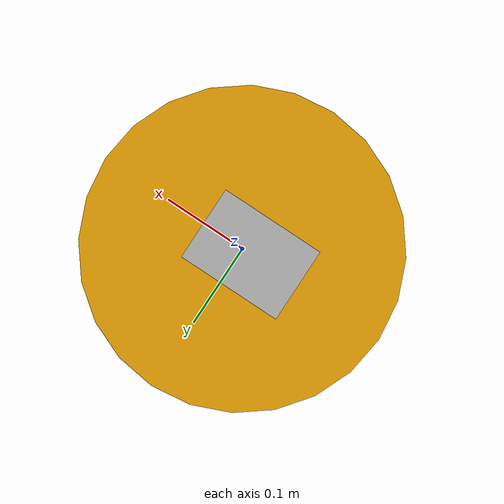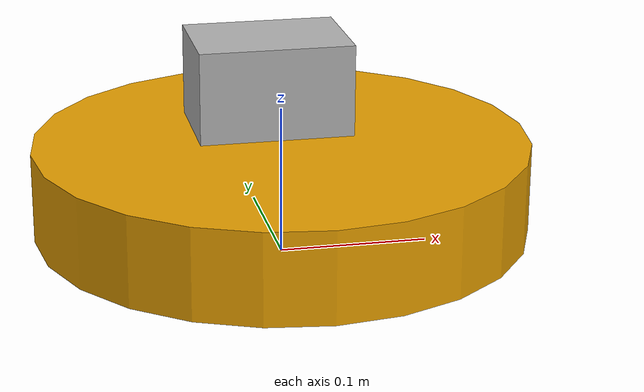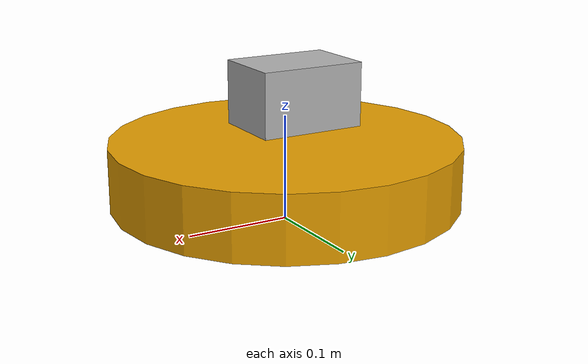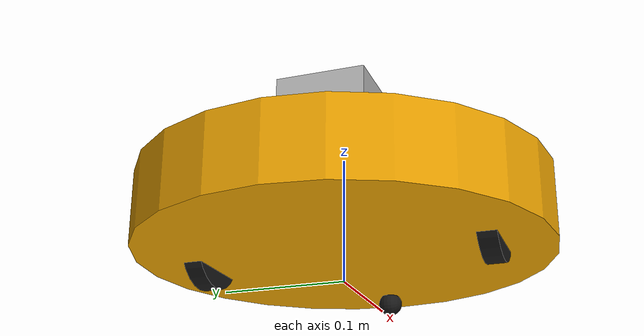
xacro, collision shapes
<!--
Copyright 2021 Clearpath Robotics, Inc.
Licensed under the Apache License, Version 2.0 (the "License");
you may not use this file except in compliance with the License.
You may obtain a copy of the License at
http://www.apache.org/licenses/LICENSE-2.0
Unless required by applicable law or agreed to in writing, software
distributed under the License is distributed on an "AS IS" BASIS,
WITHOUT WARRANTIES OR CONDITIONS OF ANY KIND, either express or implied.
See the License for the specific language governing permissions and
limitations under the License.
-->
<?xml version="1.0" ?>
<robot name="glitch" xmlns:xacro="http://ros.org/wiki/xacro">
  <!-- Base robot model -->
  <xacro:include filename="$(find glitch_description)/description/urdf/robot.urdf.xacro" />
  <xacro:include filename="$(find glitch_description)/description/urdf/rplidar.urdf.xacro" />

  <!-- Mechanical properties -->
  <xacro:property name="rplidar_x_offset"              value="${0.393584*cm2m}"/>
  <xacro:property name="rplidar_y_offset"              value="${0*cm2m}"/>
  <xacro:property name="rplidar_z_offset"              value="${7.529272*cm2m}"/>

  <!-- glitch sensor definitions -->
  <xacro:rplidar name="rplidar" parent_link="base_link" gazebo="$(arg gazebo)">
    <origin xyz="${rplidar_x_offset} ${rplidar_y_offset} ${rplidar_z_offset + base_link_z_offset}"
            rpy="0 0 ${pi/2}"/>
  </xacro:rplidar>

  <!-- Base footprint for navigation -->
  <link name="base_footprint" />
  <joint name="base_footprint_joint" type="fixed">
    <!-- Create3's base_link is already on the ground -->
    <origin xyz="0 0 0" rpy="0 0 0" />
    <parent link="base_link" />
    <child link="base_footprint" />
  </joint>
</robot>

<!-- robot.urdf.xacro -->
<robot name="robot" xmlns:xacro="http://ros.org/wiki/xacro">

  <xacro:include filename="$(find glitch_description)/description/urdf/caster.urdf.xacro" />
  <xacro:include filename="$(find glitch_description)/description/urdf/common_properties.urdf.xacro"/>
  <xacro:include filename="$(find glitch_description)/description/urdf/imu.urdf.xacro" />

  <!-- I'm not able to detach the ir_intensity sensor -->
  <xacro:include filename="$(find glitch_description)/description/urdf/wheel_with_wheeldrop.urdf.xacro" />

  <!-- Gazebo version -->
  <xacro:arg name="gazebo"                       default="classic" />

  <!-- Namespace -->
  <xacro:arg name="namespace"                    default=""/>

  <!-- Mechanical properties -->
  <xacro:property name="body_z_offset"           value="${-2.5*cm2m}" />
  <xacro:property name="body_collision_z_offset" value="${1*cm2m}" />
  <xacro:property name="body_mass"               value="2.300" />
  <xacro:property name="body_radius"             value="${16.4*cm2m}" />
  <xacro:property name="body_length"             value="${6*cm2m}" />

  <xacro:if value="${'$(arg gazebo)' == 'ignition'}">
    <xacro:property name="body_cog_x_offset"       value="${2.28*cm2m}" />
  </xacro:if>
  <xacro:if value="${'$(arg gazebo)' == 'classic'}">
    <xacro:property name="body_cog_x_offset"       value="${0*cm2m}" />
  </xacro:if>

  <xacro:property name="wheel_height"            value="${-2.75*cm2m}" />
  <xacro:property name="distance_between_wheels" value="${23.3*cm2m}" />

  <xacro:property name="caster_position_x"       value="${12.5*cm2m}" />
  <xacro:if value="${'$(arg gazebo)' == 'ignition'}">
    <xacro:property name="caster_position_z"       value="${-5.03*cm2m}" />
  </xacro:if>
  <xacro:if value="${'$(arg gazebo)' == 'classic'}">
    <xacro:property name="caster_position_z"       value="${-5.2*cm2m}" />
  </xacro:if>

  <xacro:property name="wheel_drop_offset_z"     value="${3.5*mm2m}"/>
  <xacro:property name="wheel_drop_z"            value="${wheel_height + wheel_drop_offset_z}"/>

  <xacro:property name="base_link_z_offset"     value="${6.42*cm2m}"/>

  <!-- Create 3 base definition-->
  <link name="base_link">
    <visual>
      <origin xyz="0 0 ${body_z_offset + base_link_z_offset}" rpy="0 0 ${pi/2}"/>
      <geometry>
        <mesh filename="package://glitch_description/description/models/glitch/meshes/body_visual.dae" />
      </geometry>
    </visual>
    <collision name="create3_base_collision">
      <origin xyz="0 0 ${body_z_offset + body_collision_z_offset  + base_link_z_offset}" rpy="0 0 ${pi/2}"/>
      <geometry>
        <cylinder length="${body_length}" radius="${body_radius}"/>
      </geometry>
    </collision>
    <xacro:inertial_cylinder_with_pose mass="${body_mass}" radius="${body_radius}" length="${body_length}">
      <origin xyz="${body_cog_x_offset} 0 ${body_collision_z_offset + base_link_z_offset}"/>
    </xacro:inertial_cylinder_with_pose>
  </link>

  <xacro:if value="${'$(arg gazebo)' == 'ignition'}">
    <gazebo reference="base_link">
      <xacro:material_darkgray/>
    </gazebo>
  </xacro:if>

  <!-- Wheels with mechanical wheel drop -->
  <xacro:wheel_with_wheeldrop name="left" gazebo="$(arg gazebo)" namespace="$(arg namespace)">
    <origin xyz="0 ${distance_between_wheels/2} ${wheel_drop_z  + base_link_z_offset}" rpy="${-pi/2} 0 0"/>
  </xacro:wheel_with_wheeldrop>

  <xacro:wheel_with_wheeldrop name="right" gazebo="$(arg gazebo)" namespace="$(arg namespace)">
    <origin xyz="0 ${-distance_between_wheels/2} ${wheel_drop_z  + base_link_z_offset}" rpy="${-pi/2} 0 0"/>
  </xacro:wheel_with_wheeldrop>

  <!-- Caster wheel -->
  <xacro:caster name="front_caster" parent_link="base_link">
    <origin xyz="${caster_position_x} 0 ${caster_position_z  + base_link_z_offset}" rpy="${-pi/2} 0 0"/>
  </xacro:caster>

  <!-- IMU -->
  <xacro:imu_sensor gazebo="$(arg gazebo)" namespace="$(arg namespace)">
    <origin xyz="0.050613 0.043673 ${0.0202 + base_link_z_offset}"/>
  </xacro:imu_sensor>

  <xacro:if value="${'$(arg gazebo)' == 'ignition'}">
    <gazebo>
      <plugin filename="libign_ros2_control-system.so" name="ign_ros2_control::IgnitionROS2ControlPlugin">
        <parameters>$(find glitch_control)/config/control.yaml</parameters>
        <ros>
          <remapping>~/odom:=odom</remapping>
          <remapping>/tf:=tf</remapping>
          <remapping>/tf_static:=tf_static</remapping>
          <remapping>/diagnostics:=diagnostics</remapping>
          <namespace>$(arg namespace)</namespace>
        </ros>
      </plugin>
    </gazebo>
  </xacro:if>

  <!-- Plugins -->
  <xacro:if value="${'$(arg gazebo)' == 'classic'}">
    <!-- Ground truth pose -->
    <gazebo>
      <plugin name="gazebo_ros_p3d_robot" filename="libgazebo_ros_p3d.so">
        <ros>
          <namespace>$(arg namespace)</namespace>
          <remapping>odom:=sim_ground_truth_pose</remapping>
        </ros>
        <body_name>base_link</body_name>
        <frame_name>world</frame_name>
        <update_rate>62</update_rate>
        <xyz_offset>0 0 0</xyz_offset>
        <rpy_offset>0.0 0.0 0.0</rpy_offset>
        <gaussian_noise>0.0</gaussian_noise>
      </plugin>
    </gazebo>

  </xacro:if>

  <xacro:if value="${'$(arg gazebo)' == 'ignition'}">
    <gazebo>
      <plugin filename="libignition-gazebo-pose-publisher-system.so" name="ignition::gazebo::systems::PosePublisher">
        <publish_link_pose>true</publish_link_pose>
        <publish_nested_model_pose>true</publish_nested_model_pose>
        <use_pose_vector_msg>true</use_pose_vector_msg>
        <update_frequency>62</update_frequency>
      </plugin>
    </gazebo>

    <gazebo>
      <plugin filename="libignition-gazebo-contact-system.so" name="ignition::gazebo::systems::Contact"></plugin>
    </gazebo>

    <gazebo>
      <plugin filename="libignition-gazebo-sensors-system.so" name="ignition::gazebo::systems::Sensors">
        <render_engine>ogre2</render_engine>
      </plugin>
    </gazebo>
  </xacro:if>
</robot>

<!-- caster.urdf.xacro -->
<robot xmlns:xacro="http://ros.org/wiki/xacro">

<xacro:macro name="caster" params="name parent_link *origin">
  <xacro:include filename="$(find glitch_description)/description/urdf/common_properties.urdf.xacro"/>

  <xacro:property name="radius" value="${1*cm2m}" />
  <xacro:property name="mass"   value="0.01"/>

  <joint name="${name}_joint" type="fixed">
    <parent link="${parent_link}"/>
    <child link="${name}_link"/>
    <xacro:insert_block name="origin"/>
  </joint>
  <link name="${name}_link">
    <visual>
      <geometry>
        <sphere radius="${radius}"/>
      </geometry>
      <!-- Give black color to caster in Rviz -->
      <xacro:insert_block name="material_black"/>
    </visual>
    <collision>
      <geometry>
        <sphere radius="${radius}"/>
      </geometry>
    </collision>
    <xacro:inertial_sphere mass="${mass}" radius="${radius}"/>
  </link>

  <gazebo reference="${name}_joint">
    <preserveFixedJoint>true</preserveFixedJoint>
  </gazebo>

  <gazebo reference="${name}_link">
    <material>Gazebo/DarkGrey</material>
    <mu1>0.1</mu1>
    <mu2>0.1</mu2>
    <kp>1000000.0</kp>
    <kd>1.0</kd>
  </gazebo>

</xacro:macro>
</robot>

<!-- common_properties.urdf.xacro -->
<!-- Various useful macros -->
<robot name="xacro_properties" xmlns:xacro="http://ros.org/wiki/xacro">

  <xacro:macro name="inertial_cuboid_with_pose" params="mass x y z *origin">
    <inertial>
      <mass value="${mass}" />
      <xacro:insert_block name="origin"/>
      <inertia ixx="${(1/12) * mass * (y*y + z*z)}" ixy="0.0" ixz="0.0"
        iyy="${(1/12) * mass * (x*x + z*z)}" iyz="0.0"
        izz="${(1/12) * mass * (x*x + y*y)}" />
    </inertial>
  </xacro:macro>

  <xacro:macro name="inertial_cuboid" params="mass x y z">
    <xacro:inertial_cuboid_with_pose mass="${mass}" x="${x}" y="${y}" z="${z}">
      <origin xyz="0 0 0" />
    </xacro:inertial_cuboid_with_pose>
  </xacro:macro>

  <xacro:macro name="inertial_cylinder_with_pose" params="mass radius length *origin">
    <inertial>
      <xacro:insert_block name="origin"/>
      <mass value="${mass}" />
      <inertia ixx="${(1/12) * mass * (3*radius*radius + length*length)}" ixy="0.0" ixz="0.0"
        iyy="${(1/12) * mass * (3*radius*radius + length*length)}" iyz="0.0"
        izz="${(1/2) * mass * (radius*radius)}" />
    </inertial>
  </xacro:macro>

  <xacro:macro name="inertial_cylinder" params="mass radius length">
    <xacro:inertial_cylinder_with_pose mass="${mass}" radius="${radius}" length="${length}">
      <origin xyz="0 0 0" />
    </xacro:inertial_cylinder_with_pose>
  </xacro:macro>

  <xacro:macro name="inertial_sphere" params="mass radius">
    <inertial>
      <mass value="${mass}" />
      <inertia ixx="${(2/5) * mass * radius * radius}" ixy="0.0" ixz="0.0"
	             iyy="${(2/5) * mass * radius * radius}" iyz="0.0"
	             izz="${(2/5) * mass * radius * radius}" />
    </inertial>
  </xacro:macro>

  <xacro:macro name="inertial_dummy">
    <xacro:inertial_cuboid mass="0.01" x="0.01" y="0.01" z="0.01"/>
  </xacro:macro>

  <xacro:macro name="ray_sensor"
    params="sensor_name gazebo update_rate visualize
            h_samples h_res h_min_angle h_max_angle
            v_samples:=1 v_res:=1 v_min_angle:=0 v_max_angle:=0
            r_min r_max r_res *plugin">
    <!-- Classic -->
    <xacro:if value="${gazebo == 'classic'}">
      <sensor type="ray" name="${sensor_name}">
        <update_rate>${update_rate}</update_rate>
        <visualize>${visualize}</visualize>
        <always_on>true</always_on>
        <ray>
          <scan>
            <horizontal>
              <samples>${h_samples}</samples>
              <resolution>${h_res}</resolution>
              <min_angle>${h_min_angle}</min_angle>
              <max_angle>${h_max_angle}</max_angle>
            </horizontal>
            <vertical>
              <samples>${v_samples}</samples>
              <resolution>${v_res}</resolution>
              <min_angle>${v_min_angle}</min_angle>
              <max_angle>${v_max_angle}</max_angle>
            </vertical>
          </scan>
          <range>
            <min>${r_min}</min>
            <max>${r_max}</max>
            <resolution>${r_res}</resolution>
          </range>
        </ray>
        <!-- Noise is currently disabled -->
        <noise>
          <type>gaussian</type>
          <mean>0.0</mean>
          <stddev>0.0</stddev>
        </noise>
        <xacro:insert_block name="plugin"/>
      </sensor>
    </xacro:if>

    <!-- Ignition -->
    <xacro:if value="${gazebo == 'ignition'}">
      <sensor name="${sensor_name}" type="gpu_lidar">
        <update_rate>${update_rate}</update_rate>
        <visualize>${visualize}</visualize>
        <always_on>true</always_on>
        <lidar>
          <scan>
            <horizontal>
              <samples>${h_samples}</samples>
              <resolution>${h_res}</resolution>
              <min_angle>${h_min_angle}</min_angle>
              <max_angle>${h_max_angle}</max_angle>
            </horizontal>
            <vertical>
              <samples>${v_samples}</samples>
              <resolution>${v_res}</resolution>
              <min_angle>${v_min_angle}</min_angle>
              <max_angle>${v_max_angle}</max_angle>
            </vertical>
          </scan>
          <range>
            <min>${r_min}</min>
            <max>${r_max}</max>
            <resolution>${r_res}</resolution>
          </range>
        </lidar>
      </sensor>
    </xacro:if>
  </xacro:macro>

  <!-- Conversion macros -->
  <xacro:property name="cm2m"    value="${1/100.0}"/>
  <xacro:property name="mm2m"    value="${1/1000.0}"/>
  <xacro:property name="in2m"    value="0.0254"/>
  <xacro:property name="deg2rad" value="${pi/180.0}"/>

  <!-- Material colors -->
  <xacro:property name="material_black">
    <material name="black">
      <color rgba="0.1 0.1 0.1 1"/>
    </material>
  </xacro:property>

  <!-- Material macros -->
  <xacro:macro name="material_black">
    <visual>
      <material>
        <diffuse>0 0 0 1</diffuse>
        <specular>${80/255} ${80/255} ${80/255} 1</specular>
        <emissive>0 0 0 1</emissive>
      </material>
    </visual>
  </xacro:macro>

  <xacro:macro name="material_darkgray">
    <visual>
      <material>
        <diffuse>${3/255} ${3/255} ${3/255} 1</diffuse>
        <specular>0 0 0 1</specular>
        <emissive>0 0 0 1</emissive>
      </material>
    </visual>
  </xacro:macro>

</robot>

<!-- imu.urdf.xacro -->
<robot xmlns:xacro="http://ros.org/wiki/xacro">

<xacro:macro name="imu_sensor" params="name:=imu gazebo namespace parent:=base_link update_rate:=62 *origin">

  <joint name="${name}_joint" type="fixed">
    <xacro:insert_block name="origin"/>
    <parent link="${parent}"/>
    <child link="${name}_link"/>
  </joint>

  <link name="${name}_link">
      <xacro:inertial_dummy />
  </link>

  <gazebo reference="${name}_link">
    <sensor type="imu" name="${name}">
      <always_on>true</always_on>
      <update_rate>${update_rate}</update_rate>
      <imu>
        <angular_velocity>
          <x>
            <noise type="gaussian">
              <mean>0.0</mean>
              <stddev>0.0</stddev>
            </noise>
          </x>
          <y>
            <noise type="gaussian">
              <mean>0.0</mean>
              <stddev>0.0</stddev>
            </noise>
          </y>
          <z>
            <noise type="gaussian">
              <mean>0.0</mean>
              <stddev>0.0</stddev>
            </noise>
          </z>
        </angular_velocity>
        <linear_acceleration>
          <x>
            <noise type="gaussian">
              <mean>0.0</mean>
              <stddev>0.0</stddev>
            </noise>
          </x>
          <y>
            <noise type="gaussian">
              <mean>0.0</mean>
              <stddev>0.0</stddev>
            </noise>
          </y>
          <z>
            <noise type="gaussian">
              <mean>0.0</mean>
              <stddev>0.0</stddev>
            </noise>
          </z>
        </linear_acceleration>
      </imu>
      <xacro:if value="${gazebo == 'classic'}">
        <plugin name="${name}_plugin" filename="libgazebo_ros_create_imu.so">
          <ros>
            <namespace>${namespace}</namespace>
            <remapping>~/out:=imu</remapping>
          </ros>
        </plugin>
      </xacro:if>
    </sensor>
  </gazebo>

  <gazebo reference="${name}_joint">
    <preserveFixedJoint>true</preserveFixedJoint>
  </gazebo>

</xacro:macro>
</robot>

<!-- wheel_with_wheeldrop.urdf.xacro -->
<robot xmlns:xacro="http://ros.org/wiki/xacro">

<xacro:macro name="wheel_with_wheeldrop" params="name gazebo namespace parent_link:=base_link *origin">
  <xacro:include filename="$(find glitch_description)/description/urdf/wheel.urdf.xacro" />
  <xacro:include filename="$(find glitch_description)/description/urdf/wheel_drop.urdf.xacro" />

  <!-- Wheel Drop definition -->
  <xacro:wheel_drop name="${name}" gazebo="${gazebo}" parent_link="${parent_link}" namespace="${namespace}">
    <xacro:insert_block name="origin"/>
  </xacro:wheel_drop>

  <!-- Wheel definition -->
  <xacro:wheel name="${name}" gazebo="${gazebo}" parent_link="wheel_drop_${name}">
    <origin xyz="0 0 0" rpy="0 0 0"/>
  </xacro:wheel>

</xacro:macro>
</robot>

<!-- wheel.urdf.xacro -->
<robot xmlns:xacro="http://ros.org/wiki/xacro">

<xacro:macro name="wheel" params="name gazebo parent_link *origin">

  <xacro:property name="mass"   value="0.2" />
  <xacro:property name="radius" value="${3.575*cm2m}" />
  <xacro:property name="width"  value="${1.5*cm2m}" />

  <xacro:property name="wheel_link_name"  value="${name}_wheel"/>
  <xacro:property name="wheel_joint_name" value="${wheel_link_name}_joint"/>

  <joint name="${wheel_joint_name}" type="continuous">
    <parent link="${parent_link}"/>
    <child link="${wheel_link_name}"/>
    <xacro:insert_block name="origin"/>
    <axis xyz="0 0 1"/>
  </joint>

  <link name="${wheel_link_name}">
    <visual>
      <geometry>
        <cylinder length="${width}" radius="${radius}"/>
      </geometry>
      <!-- Give black color to wheels in Rviz -->
      <xacro:insert_block name="material_black"/>
    </visual>
    <collision>
      <geometry>
        <cylinder length="${width}" radius="${radius}"/>
      </geometry>
    </collision>
    <xacro:inertial_cylinder mass="${mass}" radius="${radius}"
      length="${width}" />
  </link>

  <gazebo reference="${wheel_link_name}">
    <mu1>1.0</mu1>
    <mu2>1.0</mu2>
    <kp>1000000.0</kp>
    <kd>100.0</kd>
    <minDepth>0.0001</minDepth>
    <maxVel>1.0</maxVel>
    <material>Gazebo/DarkGrey</material>
  </gazebo>

  <xacro:if value="${gazebo == 'classic'}">
    <ros2_control name="${wheel_link_name}_controller" type="system">
      <hardware>
        <plugin>gazebo_ros2_control/GazeboSystem</plugin>
      </hardware>
      <joint name="${wheel_joint_name}">
        <state_interface name="velocity" />
        <state_interface name="position" />
        <command_interface name="velocity" />
      </joint>
    </ros2_control>
  </xacro:if>

  <xacro:if value="${gazebo == 'ignition'}">
    <ros2_control name="${wheel_link_name}_controller" type="system">
      <hardware>
        <plugin>ign_ros2_control/IgnitionSystem</plugin>
      </hardware>
      <joint name="${wheel_joint_name}">
        <state_interface name="velocity" />
        <state_interface name="position" />
        <command_interface name="velocity" />
      </joint>
    </ros2_control>
  </xacro:if>

</xacro:macro>
</robot>

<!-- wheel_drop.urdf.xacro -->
<robot xmlns:xacro="http://ros.org/wiki/xacro">
<xacro:macro name="wheel_drop" params="name gazebo parent_link namespace *origin" >
  <xacro:include filename="$(find glitch_description)/description/urdf/common_properties.urdf.xacro"/>

  <xacro:property name="detection_threshold" value="${3*cm2m}"/>

  <xacro:if value="${gazebo == 'classic'}">
    <xacro:property name="spring_stiffness_nm"  value="400"/>
    <xacro:property name="spring_damping"       value="50"/>
    <xacro:property name="spring_friction"      value="0.1"/>
  </xacro:if>

  <xacro:if value="${gazebo == 'ignition'}">
    <xacro:property name="spring_stiffness_nm"  value="450"/>
    <xacro:property name="spring_damping"       value="50"/>
    <xacro:property name="spring_friction"      value="0.1"/>
  </xacro:if>

  <xacro:property name="wd_size" value="${5*cm2m}"/>
  <xacro:property name="wd_mass" value="0.05"/>

  <xacro:property name="update_rate"   value="62" />
  <xacro:property name="wd_link_name"  value="wheel_drop_${name}"/>
  <xacro:property name="wd_joint_name" value="${wd_link_name}_joint"/>

  <joint name="${wd_joint_name}" type="prismatic">
    <parent link="${parent_link}"/>
    <child link="${wd_link_name}"/>
    <xacro:insert_block name="origin"/>
    <axis xyz="0 1 0"/>
    <limit lower="0" upper="${detection_threshold}" effort="0" velocity="0"/>
    <!-- Damping is big enough to not make the body oscillate too much when it's lifted up -->
    <dynamics damping="${spring_damping}" friction="${spring_friction}"/>
  </joint>

  <!-- Gazebo parameters to simulate a spring -->
  <gazebo reference="${wd_joint_name}">
    <provideFeedback>false</provideFeedback>
    <implicitSpringDamper>true</implicitSpringDamper>
    <!-- This value should be high enough so that the wheeldrop can
          retract with the robot's weight (mass * gravity) -->
    <springStiffness>${spring_stiffness_nm}</springStiffness>
    <springReference>${detection_threshold}</springReference>
  </gazebo>

  <link name="${wd_link_name}">
    <xacro:inertial_cuboid mass="${wd_mass}" x="${wd_size}" y="${wd_size}" z="${wd_size}"/>
  </link>

  <xacro:if value="${gazebo == 'classic'}">
    <gazebo>
      <plugin name="${wd_link_name}_plugin" filename="libgazebo_ros_create_wheel_drop.so">
        <ros>
          <namespace>$(arg namespace)</namespace>
          <remapping>~/out:=_internal/wheel_drop/${name}_wheel/event</remapping>
        </ros>
        <update_rate>${update_rate}</update_rate>
        <detection_threshold>${detection_threshold}</detection_threshold>
        <joint_name>${wd_joint_name}</joint_name>
        <frame_id>${wd_link_name}</frame_id>
      </plugin>
    </gazebo>
  </xacro:if>

</xacro:macro>
</robot>

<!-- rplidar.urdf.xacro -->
<robot xmlns:xacro="http://ros.org/wiki/xacro">

<xacro:macro name="rplidar" params="name parent_link gazebo *origin">
  <xacro:include filename="$(find glitch_description)/description/urdf/common_properties.urdf.xacro"/>

  <xacro:property name="mass"       value="0.17"/>
  <xacro:property name="length_x"   value="${7.1*cm2m}" />
  <xacro:property name="length_y"   value="${10*cm2m}" />
  <xacro:property name="length_z"   value="${6*cm2m}" />

  <xacro:property name="collision_x_offset"       value="${0*cm2m}" />
  <xacro:property name="collision_y_offset"       value="${1.3*cm2m}" />
  <xacro:property name="collision_z_offset"       value="${-1.9*cm2m}" />

  <joint name="${name}_joint" type="fixed">
    <parent link="${parent_link}"/>
    <child link="${name}_link"/>
    <xacro:insert_block name="origin"/>
  </joint>

  <link name="${name}_link">
    <visual>
      <geometry>
        <mesh filename="package://glitch_description/description/models/glitch/meshes/rplidar.dae" scale="1 1 1" />
      </geometry>
    </visual>
    <collision>
      <origin xyz="${collision_x_offset} ${collision_y_offset} ${collision_z_offset}"/>
      <geometry>
        <box size="${length_x} ${length_y} ${length_z}"/>
      </geometry>
    </collision>
    <xacro:inertial_cuboid mass="0.17" x="${length_x}" y="${length_y}" z="${length_z}"/>
  </link>

  <gazebo reference="${name}_link">
    <xacro:ray_sensor sensor_name="${name}" gazebo="${gazebo}"
                  update_rate="62.0" visualize="1"
                  h_samples="640" h_res="1.0" h_min_angle="${-pi}" h_max_angle="${pi}"
                  r_min="0.2" r_max="12.0" r_res="0.01">
                  <plugin name="dummy" filename="dummyfile"></plugin>
    </xacro:ray_sensor>
    <xacro:material_darkgray/>
  </gazebo>

  <gazebo reference="${name}_joint">
    <preserveFixedJoint>true</preserveFixedJoint>
  </gazebo>

</xacro:macro>
</robot>
